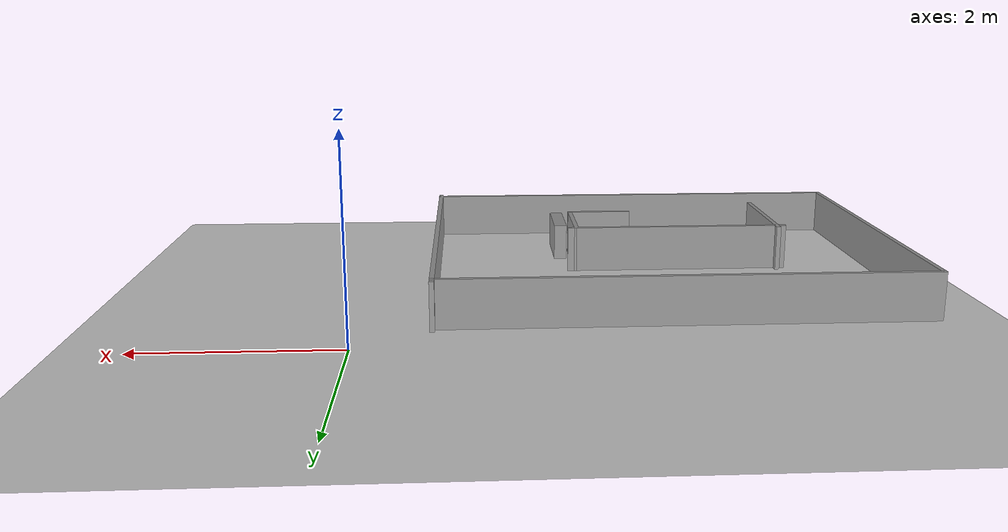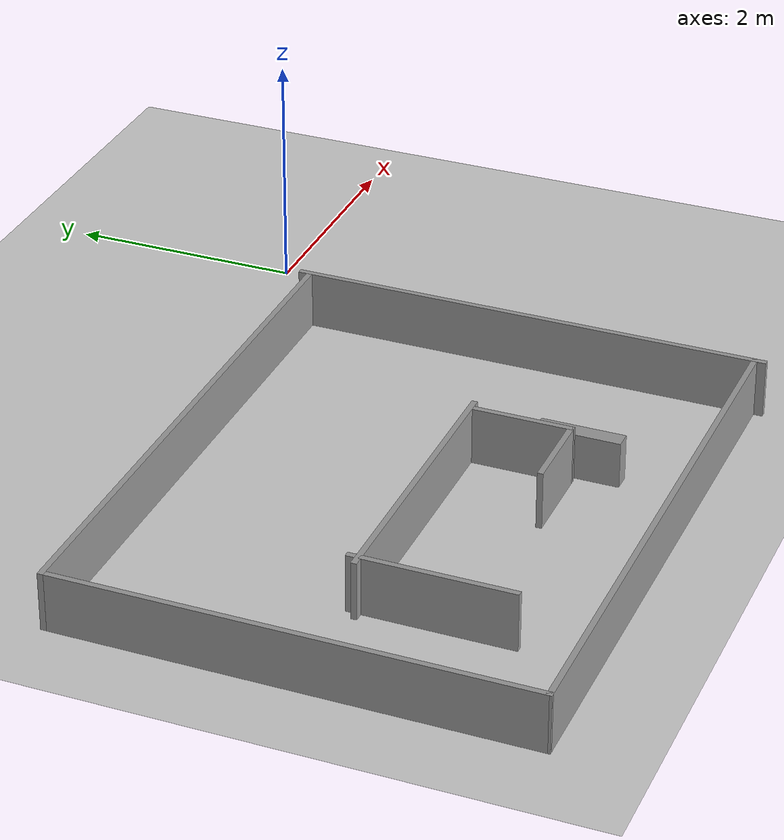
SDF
<sdf version="1.6">
 <world name="default">
  <light name="sun" type="directional">
   <pose>0 0 10 0 -0 0</pose>
   <diffuse>0.8 0.8 0.8 1</diffuse>
   <specular>0.2 0.2 0.2 1</specular>
   <attenuation>
    <range>1000</range>
    <constant>0.9</constant>
    <linear>0.01</linear>
    <quadratic>0.001</quadratic>
   </attenuation>
   <direction>-0.5 0.1 -0.9</direction>
  </light>
  <model name="ground_plane">
   <static>1</static>
   <link name="link">
    <collision name="collision">
     <geometry><plane><normal>0 0 1</normal><size>100 100</size></plane></geometry>
     <surface><friction><ode><mu>100</mu><mu2>50</mu2></ode></friction></surface>
    </collision>
    <visual name="visual">
     <cast_shadows>0</cast_shadows>
     <geometry><plane><normal>0 0 1</normal><size>100 100</size></plane></geometry>
     <material>
      <script><uri>file://media/materials/scripts/gazebo.material</uri><name>Gazebo/Grey</name></script>
     </material>
    </visual>
    <velocity_decay><linear>0</linear><angular>0</angular></velocity_decay>
   </link>
  </model>
  <physics name="default_physics" default="0" type="ode">
   <max_step_size>0.001</max_step_size>
   <real_time_factor>1</real_time_factor>
   <real_time_update_rate>1000</real_time_update_rate>
  </physics>
  <scene><ambient>0.4 0.4 0.4 1</ambient><background>0.7 0.7 0.7 1</background><shadows>1</shadows></scene>
  <spherical_coordinates>
   <surface_model>EARTH_WGS84</surface_model>
   <latitude_deg>0</latitude_deg>
   <longitude_deg>0</longitude_deg>
   <elevation>0</elevation>
   <heading_deg>0</heading_deg>
  </spherical_coordinates>
  <model name="BuildingDefaultName">
   <link name="Wall_1">
    <collision name="Wall_1_Collision">
     <geometry><box><size>4.16 0.05 0.5</size></box></geometry>
     <pose>0 0 0.25 0 -0 0</pose>
    </collision>
    <visual name="Wall_1_Visual">
     <pose>0 0 0.25 0 -0 0</pose>
     <geometry><box><size>4.16 0.05 0.5</size></box></geometry>
     <material>
      <script><uri>file://media/materials/scripts/gazebo.material</uri><name>Gazebo/Grey</name></script>
     </material>
    </visual>
    <velocity_decay><linear>0</linear><angular>0</angular></velocity_decay>
    <pose>-0.74 -2.54 0 0 -0 1.5708</pose>
   </link>
   <link name="Wall_2">
    <collision name="Wall_2_Collision">
     <geometry><box><size>5.01 0.05 0.5</size></box></geometry>
     <pose>0 0 0.25 0 -0 0</pose>
    </collision>
    <visual name="Wall_2_Visual">
     <pose>0 0 0.25 0 -0 0</pose>
     <geometry><box><size>5.01 0.05 0.5</size></box></geometry>
     <material>
      <script><uri>file://media/materials/scripts/gazebo.material</uri><name>Gazebo/Grey</name></script>
     </material>
    </visual>
    <velocity_decay><linear>0</linear><angular>0</angular></velocity_decay>
    <pose>-3.22 -0.56 0 0 -0 3.14159</pose>
   </link>
   <link name="Wall_3">
    <collision name="Wall_3_Collision">
     <geometry><box><size>4 0.05 0.5</size></box></geometry>
     <pose>0 0 0.25 0 -0 0</pose>
    </collision>
    <visual name="Wall_3_Visual">
     <pose>0 0 0.25 0 -0 0</pose>
     <geometry><box><size>4 0.05 0.5</size></box></geometry>
     <material>
      <script><uri>file://media/materials/scripts/gazebo.material</uri><name>Gazebo/Grey</name></script>
     </material>
    </visual>
    <velocity_decay><linear>0</linear><angular>0</angular></velocity_decay>
    <pose>-5.7 -2.535 0 0 0 -1.5708</pose>
   </link>
   <link name="Wall_4">
    <collision name="Wall_4_Collision">
     <geometry><box><size>5.01001 0.05 0.5</size></box></geometry>
     <pose>0 0 0.25 0 -0 0</pose>
    </collision>
    <visual name="Wall_4_Visual">
     <pose>0 0 0.25 0 -0 0</pose>
     <geometry><box><size>5.01001 0.05 0.5</size></box></geometry>
     <material>
      <script><uri>file://media/materials/scripts/gazebo.material</uri><name>Gazebo/Grey</name></script>
     </material>
    </visual>
    <velocity_decay><linear>0</linear><angular>0</angular></velocity_decay>
    <pose>-3.22 -4.515 0 0 0 -0.002016</pose>
   </link>
   <link name="Wall_6">
    <collision name="Wall_6_Collision">
     <geometry><box><size>1.37107 0.05 0.5</size></box></geometry>
     <pose>0 0 0.25 0 -0 0</pose>
    </collision>
    <visual name="Wall_6_Visual">
     <pose>0 0 0.25 0 -0 0</pose>
     <geometry><box><size>1.37107 0.05 0.5</size></box></geometry>
     <material>
      <script><uri>file://media/materials/scripts/gazebo.material</uri><name>Gazebo/Grey</name></script>
     </material>
    </visual>
    <velocity_decay><linear>0</linear><angular>0</angular></velocity_decay>
    <pose>-4.629 -3.21622 0 0 -0 1.5708</pose>
   </link>
   <link name="Wall_7">
    <collision name="Wall_7_Collision">
     <geometry><box><size>2.51173 0.05 0.5</size></box></geometry>
     <pose>0 0 0.25 0 -0 0</pose>
    </collision>
    <visual name="Wall_7_Visual">
     <pose>0 0 0.25 0 -0 0</pose>
     <geometry><box><size>2.51173 0.05 0.5</size></box></geometry>
     <material>
      <script><uri>file://media/materials/scripts/gazebo.material</uri><name>Gazebo/Grey</name></script>
     </material>
    </visual>
    <velocity_decay><linear>0</linear><angular>0</angular></velocity_decay>
    <pose>-3.47313 -2.63068 0 0 -0 0</pose>
   </link>
   <link name="Wall_8">
    <collision name="Wall_8_Collision">
     <geometry><box><size>0.90132 0.05 0.5</size></box></geometry>
     <pose>0 0 0.25 0 -0 0</pose>
    </collision>
    <visual name="Wall_8_Visual">
     <pose>0 0 0.25 0 -0 0</pose>
     <geometry><box><size>0.90132 0.05 0.5</size></box></geometry>
     <material>
      <script><uri>file://media/materials/scripts/gazebo.material</uri><name>Gazebo/Grey</name></script>
     </material>
    </visual>
    <velocity_decay><linear>0</linear><angular>0</angular></velocity_decay>
    <pose>-2.31713 -3.05634 0 0 0 -1.57048</pose>
   </link>
   <link name="Wall_9">
    <collision name="Wall_9_Collision">
     <geometry><box><size>0.75 0.05 0.5</size></box></geometry>
     <pose>0 0 0.25 0 -0 0</pose>
    </collision>
    <visual name="Wall_9_Visual">
     <pose>0 0 0.25 0 -0 0</pose>
     <geometry><box><size>0.75 0.05 0.5</size></box></geometry>
     <material>
      <script><uri>file://media/materials/scripts/gazebo.material</uri><name>Gazebo/Grey</name></script>
     </material>
    </visual>
    <velocity_decay><linear>0</linear><angular>0</angular></velocity_decay>
    <pose>-2.667 -3.482 0 0 -0 3.14159</pose>
   </link>
   <static>1</static>
  </model>
  <gravity>0 0 -9.8</gravity>
  <magnetic_field>6e-06 2.3e-05 -4.2e-05</magnetic_field>
  <atmosphere type="adiabatic"/>
  <model name="unit_box_0">
   <pose>-2.17923 -3.51824 0.200967 0 -0 0.00013</pose>
   <link name="link">
    <inertial>
     <mass>1</mass>
     <inertia>
      <ixx>0.166667</ixx>
      <ixy>0</ixy>
      <ixz>0</ixz>
      <iyy>0.166667</iyy>
      <iyz>0</iyz>
      <izz>0.166667</izz>
     </inertia>
    </inertial>
    <collision name="collision">
     <geometry><box><size>0.144366 0.710926 0.401934</size></box></geometry>
    </collision>
    <visual name="visual">
     <geometry><box><size>0.144366 0.710926 0.401934</size></box></geometry>
     <material>
      <script><name>Gazebo/Grey</name><uri>file://media/materials/scripts/gazebo.material</uri></script>
     </material>
    </visual>
   </link>
  </model>
 </world>
</sdf>
